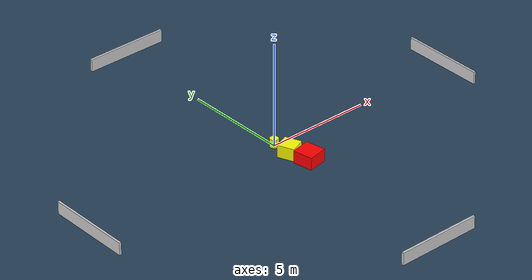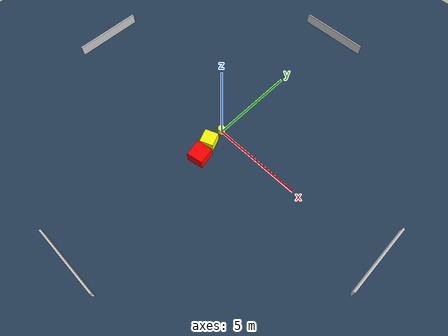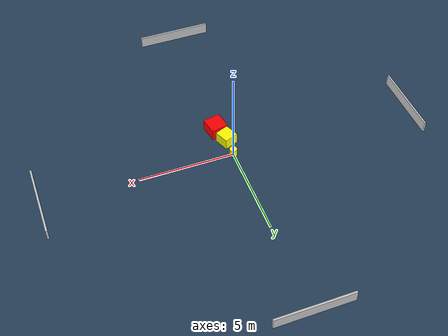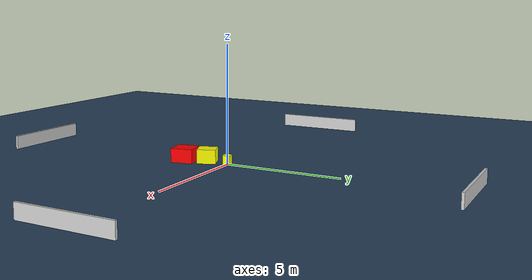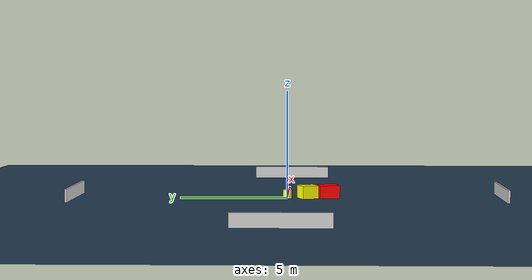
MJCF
<?xml version="1.0" ?>
<mujoco model="generated_environment">
  <option timestep="0.01" integrator="RK4" cone="elliptic"/>
  <default>
    <geom density="1"/>
  </default>
  <asset>
    <texture builtin="gradient" height="3072" name="skybox" rgb1="0.3 0.5 0.7" rgb2="0 0 0" type="skybox" width="512"/>
    <texture builtin="checker" height="300" name="groundplane" rgb1="0.2 0.3 0.4" rgb2="0.1 0.2 0.3" type="2d" width="300"/>
    <material name="groundplane" reflectance="0.2" texrepeat="5 5" texture="groundplane"/>
  </asset>
  <worldbody>
    <light dir="0 0 -1" directional="true" pos="0 0 1.5"/>
    <geom condim="3" friction="0.5 0.005 0.001" material="groundplane" name="floor" pos="0 0 0" size="0 0 0.05" type="plane"/>
    <body name="walls">
      <geom name="wall_1" condim="4" pos="-10.0 0.0 0.3" rgba="0.800000011920929 0.800000011920929 0.800000011920929 1.0" size="0.05 2.0 0.3" type="box"/>
      <geom name="wall_2" condim="4" pos="10.0 0.0 0.3" rgba="0.800000011920929 0.800000011920929 0.800000011920929 1.0" size="0.05 2.0 0.3" type="box"/>
      <geom name="wall_3" condim="4" pos="0.0 -10.0 0.3" rgba="0.800000011920929 0.800000011920929 0.800000011920929 1.0" size="2.0 0.05 0.3" type="box"/>
      <geom name="wall_4" condim="4" pos="0.0 10.0 0.3" rgba="0.800000011920929 0.800000011920929 0.800000011920929 1.0" size="2.0 0.05 0.3" type="box"/>
    </body>
    <body name="robot">
      <joint name="joint_x" type="slide" pos="0 0 0" axis="1 0 0"/>
      <joint name="joint_y" type="slide" pos="0 0 0" axis="0 1 0"/>
      <geom name="robot" type="cylinder" pos="0.0 0.0 0.2" size="0.2 0.2 0.0" mass="5.0" friction="1.0 0.005 0.0001" condim="4" rgba="1.0 1.0 0.0 1.0"/>
    </body>
    <body name="obstacle_1_movable">
      <geom name="obstacle_1_movable" condim="4" pos="0.014769710746433485 -0.9603809600432712 0.3" euler="0 0 291.8863862652758" friction="0.0 0.005 0.001" rgba="1.0 1.0 0.0 1.0" size="0.39385861664071065 0.3753764096838167 0.3" type="box" mass="0.1"/>
      <joint type="free"/>
    </body>
    <body name="obstacle_2_static">
      <geom name="obstacle_2_static" condim="4" pos="0.2810577300435929 -1.9006398348135254 0.3" euler="0 0 10.507649622291208" friction="0.0 0.005 0.001" rgba="1.0 0.0 0.0 1.0" size="0.4622229694325039 0.47307249833758896 0.3" type="box"/>
    </body>
  </worldbody>
  <actuator>
    <motor name="actuator_x" joint="joint_x" gear="1" ctrlrange="-1 1"/>
    <motor name="actuator_y" joint="joint_y" gear="1" ctrlrange="-1 1"/>
  </actuator>
</mujoco>
